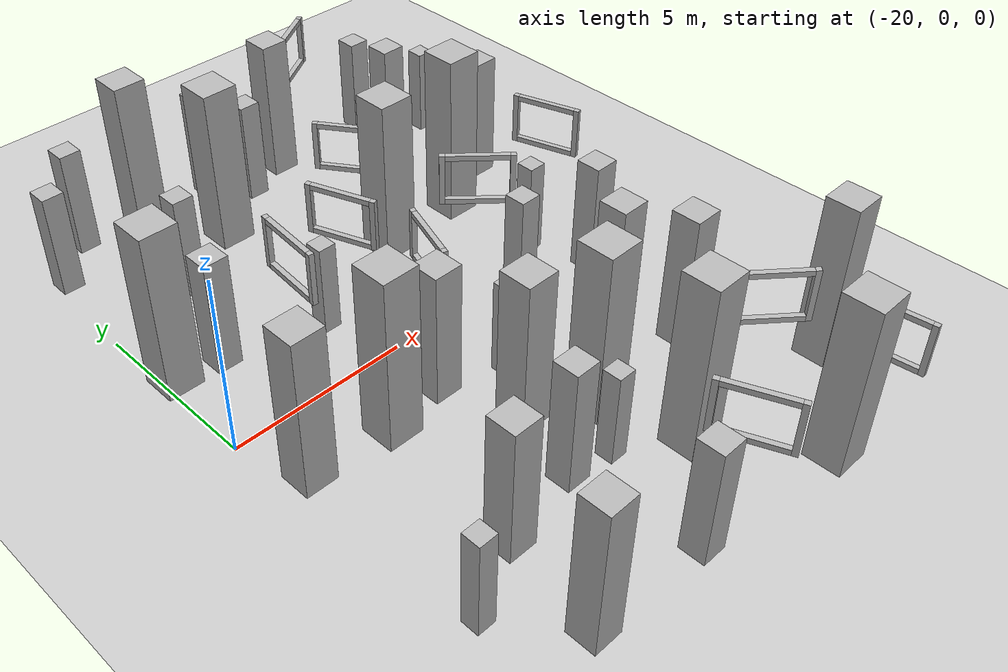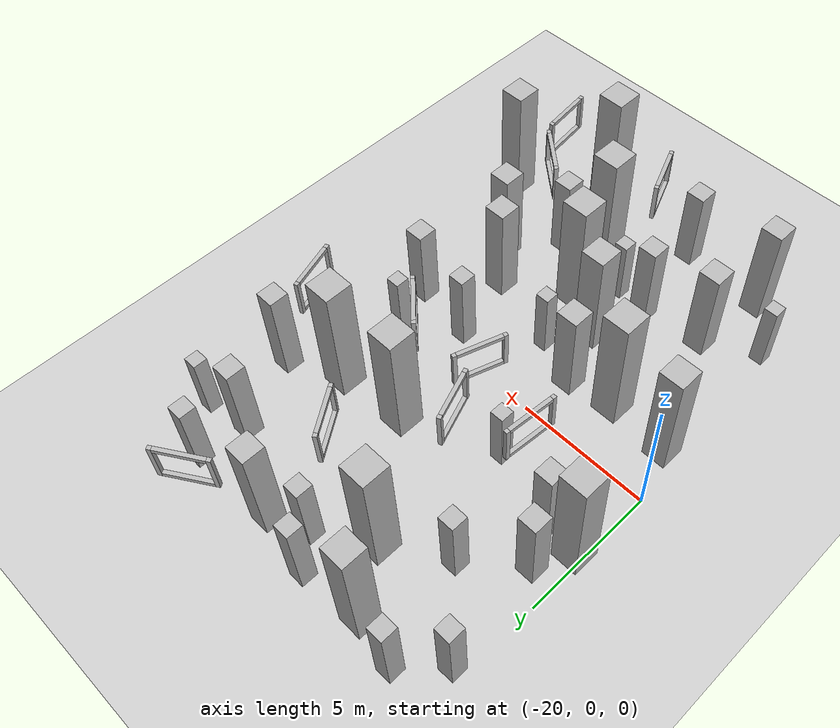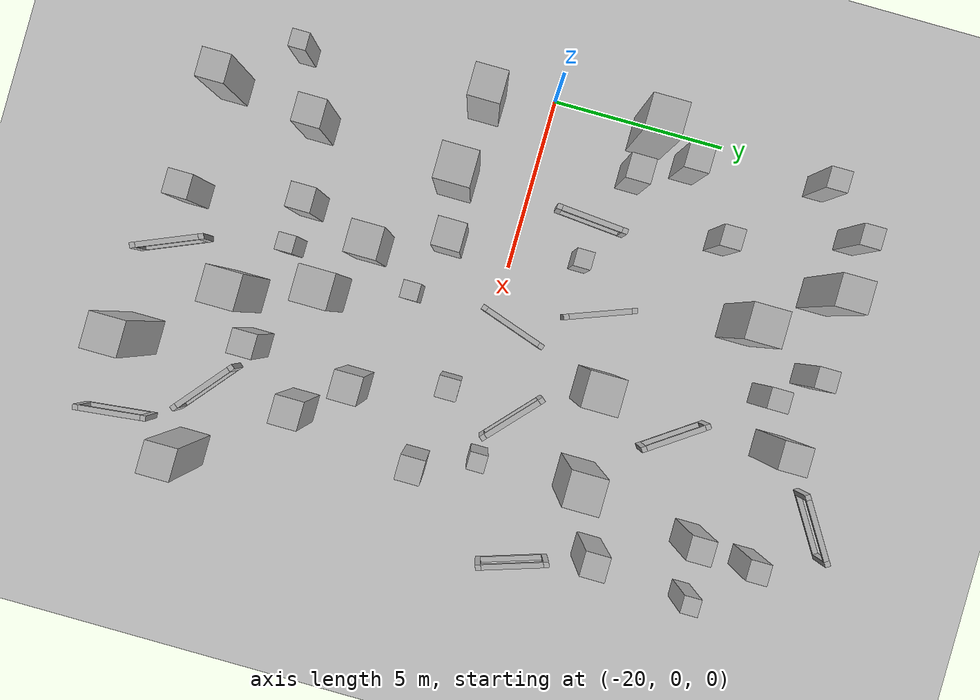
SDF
<sdf version="1.7">
 <world name="default">
  <model name="ground_plane">
   <static>1</static>
   <link name="link">
    <collision name="collision">
     <geometry><plane><normal>0 0 1</normal><size>200 200</size></plane></geometry>
     <surface>
      <contact><collide_bitmask>65535</collide_bitmask></contact>
      <friction><ode><mu>100</mu><mu2>50</mu2></ode></friction>
     </surface>
    </collision>
    <visual name="visual">
     <cast_shadows>0</cast_shadows>
     <geometry><plane><normal>0 0 1</normal><size>200 200</size></plane></geometry>
     <material>
      <script><uri>file://media/materials/scripts/gazebo.material</uri><name>Gazebo/Grey</name></script>
     </material>
    </visual>
   </link>
  </model>
  <model name="box_0">
   <static>true</static>
   <pose>-15.693732802561282 1.9010412841248048 1.3021207821565621 0.0 0.0 0.0</pose>
   <link name="link">
    <visual name="visual"><geometry><box><size>0.5 0.5 2.6</size></box></geometry></visual>
    <collision name="collision"><geometry><box><size>0.5 0.5 2.6</size></box></geometry></collision>
   </link>
  </model>
  <model name="box_4">
   <static>true</static>
   <pose>-9.775437775966598 3.4261886387856073 2.4927592980274222 0.0 0.0 0.0</pose>
   <link name="link">
    <visual name="visual"><geometry><box><size>1.0 1.0 5.0</size></box></geometry></visual>
    <collision name="collision"><geometry><box><size>1.0 1.0 5.0</size></box></geometry></collision>
   </link>
  </model>
  <model name="box_11">
   <static>true</static>
   <pose>-18.34497994796393 9.174452006319477 1.5645176789630977 0.0 0.0 0.0</pose>
   <link name="link">
    <visual name="visual"><geometry><box><size>0.6 0.6 3.1</size></box></geometry></visual>
    <collision name="collision"><geometry><box><size>0.6 0.6 3.1</size></box></geometry></collision>
   </link>
  </model>
  <model name="box_13">
   <static>true</static>
   <pose>-7.383856976449161 7.260608141986836 1.2957606630450136 0.0 0.0 0.0</pose>
   <link name="link">
    <visual name="visual"><geometry><box><size>0.5 0.5 2.6</size></box></geometry></visual>
    <collision name="collision"><geometry><box><size>0.5 0.5 2.6</size></box></geometry></collision>
   </link>
  </model>
  <model name="box_17">
   <static>true</static>
   <pose>-18.408177678134862 2.6778827294822616 1.6267776214189247 0.0 0.0 0.0</pose>
   <link name="link">
    <visual name="visual"><geometry><box><size>0.7 0.7 3.3</size></box></geometry></visual>
    <collision name="collision"><geometry><box><size>0.7 0.7 3.3</size></box></geometry></collision>
   </link>
  </model>
  <model name="box_18">
   <static>true</static>
   <pose>-17.320881476741317 5.58467907052054 1.4753970393791804 0.0 0.0 0.0</pose>
   <link name="link">
    <visual name="visual"><geometry><box><size>0.6 0.6 3.0</size></box></geometry></visual>
    <collision name="collision"><geometry><box><size>0.6 0.6 3.0</size></box></geometry></collision>
   </link>
  </model>
  <model name="box_22">
   <static>true</static>
   <pose>-14.306891463995463 9.029986216593336 1.5827475564926994 0.0 0.0 0.0</pose>
   <link name="link">
    <visual name="visual"><geometry><box><size>0.6 0.6 3.2</size></box></geometry></visual>
    <collision name="collision"><geometry><box><size>0.6 0.6 3.2</size></box></geometry></collision>
   </link>
  </model>
  <model name="box_25">
   <static>true</static>
   <pose>-10.334891847796515 -9.624662155377358 2.3940854821781707 0.0 0.0 0.0</pose>
   <link name="link">
    <visual name="visual"><geometry><box><size>1.0 1.0 4.8</size></box></geometry></visual>
    <collision name="collision"><geometry><box><size>1.0 1.0 4.8</size></box></geometry></collision>
   </link>
  </model>
  <model name="box_26">
   <static>true</static>
   <pose>-15.178070919298117 -5.858220049039058 1.7735471317737157 0.0 0.0 0.0</pose>
   <link name="link">
    <visual name="visual"><geometry><box><size>0.7 0.7 3.5</size></box></geometry></visual>
    <collision name="collision"><geometry><box><size>0.7 0.7 3.5</size></box></geometry></collision>
   </link>
  </model>
  <model name="box_27">
   <static>true</static>
   <pose>-19.68421008236153 2.8374367884617406 2.4128040677091307 0.0 0.0 0.0</pose>
   <link name="link">
    <visual name="visual"><geometry><box><size>1.0 1.0 4.8</size></box></geometry></visual>
    <collision name="collision"><geometry><box><size>1.0 1.0 4.8</size></box></geometry></collision>
   </link>
  </model>
  <model name="box_31">
   <static>true</static>
   <pose>-11.321248463884066 -0.714655532988278 1.610023235543801 0.0 0.0 0.0</pose>
   <link name="link">
    <visual name="visual"><geometry><box><size>0.6 0.6 3.2</size></box></geometry></visual>
    <collision name="collision"><geometry><box><size>0.6 0.6 3.2</size></box></geometry></collision>
   </link>
  </model>
  <model name="box_34">
   <static>true</static>
   <pose>-15.202415172383365 6.794662659507182 2.3876265205682365 0.0 0.0 0.0</pose>
   <link name="link">
    <visual name="visual"><geometry><box><size>1.0 1.0 4.8</size></box></geometry></visual>
    <collision name="collision"><geometry><box><size>1.0 1.0 4.8</size></box></geometry></collision>
   </link>
  </model>
  <model name="box_47">
   <static>true</static>
   <pose>-16.601785446528687 8.764641522759074 2.356862795899992 0.0 0.0 0.0</pose>
   <link name="link">
    <visual name="visual"><geometry><box><size>0.9 0.9 4.7</size></box></geometry></visual>
    <collision name="collision"><geometry><box><size>0.9 0.9 4.7</size></box></geometry></collision>
   </link>
  </model>
  <model name="box_48">
   <static>true</static>
   <pose>-19.596600954006078 7.922800407692108 1.5100188059823405 0.0 0.0 0.0</pose>
   <link name="link">
    <visual name="visual"><geometry><box><size>0.6 0.6 3.0</size></box></geometry></visual>
    <collision name="collision"><geometry><box><size>0.6 0.6 3.0</size></box></geometry></collision>
   </link>
  </model>
  <model name="box_49">
   <static>true</static>
   <pose>-9.580787909558811 0.5934310114886454 1.3519264166614793 0.0 0.0 0.0</pose>
   <link name="link">
    <visual name="visual"><geometry><box><size>0.5 0.5 2.7</size></box></geometry></visual>
    <collision name="collision"><geometry><box><size>0.5 0.5 2.7</size></box></geometry></collision>
   </link>
  </model>
  <model name="box_50">
   <static>true</static>
   <pose>-10.99058011233733 -6.332876920785466 1.672757646255286 0.0 0.0 0.0</pose>
   <link name="link">
    <visual name="visual"><geometry><box><size>0.7 0.7 3.3</size></box></geometry></visual>
    <collision name="collision"><geometry><box><size>0.7 0.7 3.3</size></box></geometry></collision>
   </link>
  </model>
  <model name="box_55">
   <static>true</static>
   <pose>-13.917800924355209 -6.048339329233481 1.281249746202302 0.0 0.0 0.0</pose>
   <link name="link">
    <visual name="visual"><geometry><box><size>0.5 0.5 2.6</size></box></geometry></visual>
    <collision name="collision"><geometry><box><size>0.5 0.5 2.6</size></box></geometry></collision>
   </link>
  </model>
  <model name="box_61">
   <static>true</static>
   <pose>-19.098301855714062 4.102299220456159 1.6705926187938518 0.0 0.0 0.0</pose>
   <link name="link">
    <visual name="visual"><geometry><box><size>0.7 0.7 3.3</size></box></geometry></visual>
    <collision name="collision"><geometry><box><size>0.7 0.7 3.3</size></box></geometry></collision>
   </link>
  </model>
  <model name="box_62">
   <static>true</static>
   <pose>-14.642151781865866 -9.152511274803015 1.6656507049397375 0.0 0.0 0.0</pose>
   <link name="link">
    <visual name="visual"><geometry><box><size>0.7 0.7 3.3</size></box></geometry></visual>
    <collision name="collision"><geometry><box><size>0.7 0.7 3.3</size></box></geometry></collision>
   </link>
  </model>
  <model name="box_69">
   <static>true</static>
   <pose>-8.795870464743608 8.72405908389663 1.4729630395441662 0.0 0.0 0.0</pose>
   <link name="link">
    <visual name="visual"><geometry><box><size>0.6 0.6 2.9</size></box></geometry></visual>
    <collision name="collision"><geometry><box><size>0.6 0.6 2.9</size></box></geometry></collision>
   </link>
  </model>
  <model name="box_74">
   <static>true</static>
   <pose>-9.001530488826376 6.974198633915016 1.728503326522644 0.0 0.0 0.0</pose>
   <link name="link">
    <visual name="visual"><geometry><box><size>0.7 0.7 3.5</size></box></geometry></visual>
    <collision name="collision"><geometry><box><size>0.7 0.7 3.5</size></box></geometry></collision>
   </link>
  </model>
  <model name="box_75">
   <static>true</static>
   <pose>-7.559929930011764 -7.420187723595559 2.3512050250009797 0.0 0.0 0.0</pose>
   <link name="link">
    <visual name="visual"><geometry><box><size>0.9 0.9 4.7</size></box></geometry></visual>
    <collision name="collision"><geometry><box><size>0.9 0.9 4.7</size></box></geometry></collision>
   </link>
  </model>
  <model name="box_79">
   <static>true</static>
   <pose>-13.430722755179278 7.9912064087477965 1.5132552874328469 0.0 0.0 0.0</pose>
   <link name="link">
    <visual name="visual"><geometry><box><size>0.6 0.6 3.0</size></box></geometry></visual>
    <collision name="collision"><geometry><box><size>0.6 0.6 3.0</size></box></geometry></collision>
   </link>
  </model>
  <model name="box_83">
   <static>true</static>
   <pose>-19.32112132718703 -7.166328616966339 1.3719991754825134 0.0 0.0 0.0</pose>
   <link name="link">
    <visual name="visual"><geometry><box><size>0.5 0.5 2.7</size></box></geometry></visual>
    <collision name="collision"><geometry><box><size>0.5 0.5 2.7</size></box></geometry></collision>
   </link>
  </model>
  <model name="box_86">
   <static>true</static>
   <pose>-9.585912128171188 -4.639331684046455 1.9503960932806659 0.0 0.0 0.0</pose>
   <link name="link">
    <visual name="visual"><geometry><box><size>0.8 0.8 3.9</size></box></geometry></visual>
    <collision name="collision"><geometry><box><size>0.8 0.8 3.9</size></box></geometry></collision>
   </link>
  </model>
  <model name="box_87">
   <static>true</static>
   <pose>-12.96994618035811 -4.756420934403877 2.433605457311555 0.0 0.0 0.0</pose>
   <link name="link">
    <visual name="visual"><geometry><box><size>1.0 1.0 4.9</size></box></geometry></visual>
    <collision name="collision"><geometry><box><size>1.0 1.0 4.9</size></box></geometry></collision>
   </link>
  </model>
  <model name="box_89">
   <static>true</static>
   <pose>-17.006512714398223 -2.0571651711662264 2.4717994325021175 0.0 0.0 0.0</pose>
   <link name="link">
    <visual name="visual"><geometry><box><size>1.0 1.0 4.9</size></box></geometry></visual>
    <collision name="collision"><geometry><box><size>1.0 1.0 4.9</size></box></geometry></collision>
   </link>
  </model>
  <model name="box_94">
   <static>true</static>
   <pose>-12.066474680729522 8.559443396809783 2.1125334046797635 0.0 0.0 0.0</pose>
   <link name="link">
    <visual name="visual"><geometry><box><size>0.8 0.8 4.2</size></box></geometry></visual>
    <collision name="collision"><geometry><box><size>0.8 0.8 4.2</size></box></geometry></collision>
   </link>
  </model>
  <model name="box_95">
   <static>true</static>
   <pose>-17.43304669144555 -6.227975599334545 1.8981434304040596 0.0 0.0 0.0</pose>
   <link name="link">
    <visual name="visual"><geometry><box><size>0.8 0.8 3.8</size></box></geometry></visual>
    <collision name="collision"><geometry><box><size>0.8 0.8 3.8</size></box></geometry></collision>
   </link>
  </model>
  <model name="box_97">
   <static>true</static>
   <pose>-15.289361052982088 -1.783559502434386 1.915635433409656 0.0 0.0 0.0</pose>
   <link name="link">
    <visual name="visual"><geometry><box><size>0.8 0.8 3.8</size></box></geometry></visual>
    <collision name="collision"><geometry><box><size>0.8 0.8 3.8</size></box></geometry></collision>
   </link>
  </model>
  <model name="box_99">
   <static>true</static>
   <pose>-8.9527658331115 -1.0938735919976708 1.6637966947212057 0.0 0.0 0.0</pose>
   <link name="link">
    <visual name="visual"><geometry><box><size>0.7 0.7 3.3</size></box></geometry></visual>
    <collision name="collision"><geometry><box><size>0.7 0.7 3.3</size></box></geometry></collision>
   </link>
  </model>
  <model name="box_100">
   <static>true</static>
   <pose>-13.582646553381492 -2.4135328312218496 1.3343229006603203 0.0 0.0 0.0</pose>
   <link name="link">
    <visual name="visual"><geometry><box><size>0.5 0.5 2.7</size></box></geometry></visual>
    <collision name="collision"><geometry><box><size>0.5 0.5 2.7</size></box></geometry></collision>
   </link>
  </model>
  <model name="box_101">
   <static>true</static>
   <pose>-19.30140651630435 -1.8477611684641033 2.260051603068443 0.0 0.0 0.0</pose>
   <link name="link">
    <visual name="visual"><geometry><box><size>0.9 0.9 4.5</size></box></geometry></visual>
    <collision name="collision"><geometry><box><size>0.9 0.9 4.5</size></box></geometry></collision>
   </link>
  </model>
  <model name="box_108">
   <static>true</static>
   <pose>-12.360875105007123 3.2163285240513986 2.4206616585411442 0.0 0.0 0.0</pose>
   <link name="link">
    <visual name="visual"><geometry><box><size>1.0 1.0 4.8</size></box></geometry></visual>
    <collision name="collision"><geometry><box><size>1.0 1.0 4.8</size></box></geometry></collision>
   </link>
  </model>
  <model name="box_109">
   <static>true</static>
   <pose>-7.856709699874834 4.331550577828416 1.8429803151894784 0.0 0.0 0.0</pose>
   <link name="link">
    <visual name="visual"><geometry><box><size>0.7 0.7 3.7</size></box></geometry></visual>
    <collision name="collision"><geometry><box><size>0.7 0.7 3.7</size></box></geometry></collision>
   </link>
  </model>
  <model name="box_111">
   <static>true</static>
   <pose>-10.647865228211089 -3.3043572665611176 2.0157988238267817 0.0 0.0 0.0</pose>
   <link name="link">
    <visual name="visual"><geometry><box><size>0.8 0.8 4.0</size></box></geometry></visual>
    <collision name="collision"><geometry><box><size>0.8 0.8 4.0</size></box></geometry></collision>
   </link>
  </model>
  <model name="box_112">
   <static>true</static>
   <pose>-17.8561118385449 -8.924028524757308 2.047480657995799 0.0 0.0 0.0</pose>
   <link name="link">
    <visual name="visual"><geometry><box><size>0.8 0.8 4.1</size></box></geometry></visual>
    <collision name="collision"><geometry><box><size>0.8 0.8 4.1</size></box></geometry></collision>
   </link>
  </model>
  <model name="box_113">
   <static>true</static>
   <pose>-14.521981902146518 -3.856652532999947 2.1973340723633377 0.0 0.0 0.0</pose>
   <link name="link">
    <visual name="visual"><geometry><box><size>0.9 0.9 4.4</size></box></geometry></visual>
    <collision name="collision"><geometry><box><size>0.9 0.9 4.4</size></box></geometry></collision>
   </link>
  </model>
  <model name="box_116">
   <static>true</static>
   <pose>-12.311692166315108 -7.02919646535195 2.477296374915014 0.0 0.0 0.0</pose>
   <link name="link">
    <visual name="visual"><geometry><box><size>1.0 1.0 5.0</size></box></geometry></visual>
    <collision name="collision"><geometry><box><size>1.0 1.0 5.0</size></box></geometry></collision>
   </link>
  </model>
  <model name="block_0">
   <pose>-13.383300756689483 0.5363580835997173 1.7935142069319716 0.0 0.0 -0.32617459520312964</pose>
   <static>true</static>
   <link name="right_vertical_edge">
    <pose>0 0.925 0 0 0 0</pose>
    <visual name="right_visual">
     <geometry><box><size>0.15 0.15 1.5</size></box></geometry>
     <material>Gazebo/Blue</material>
    </visual>
    <collision name="right_collision"><geometry><box><size>0.15 0.15 1.5</size></box></geometry></collision>
   </link>
   <link name="left_vertical_edge">
    <pose>0 -0.925 0 0 0 0</pose>
    <visual name="left_visual">
     <geometry><box><size>0.15 0.15 1.5</size></box></geometry>
     <material>Gazebo/Blue</material>
    </visual>
    <collision name="left_collision"><geometry><box><size>0.15 0.15 1.5</size></box></geometry></collision>
   </link>
   <link name="top_horizontal_edge">
    <pose>0 0 0.675 0 0 0</pose>
    <visual name="top_visual">
     <geometry><box><size>0.15 1.7 0.15</size></box></geometry>
     <material>Gazebo/Blue</material>
    </visual>
    <collision name="top_collision"><geometry><box><size>0.15 1.7 0.15</size></box></geometry></collision>
   </link>
   <link name="bottom_horizontal_edge">
    <pose>0 0 -0.675 0 0 0</pose>
    <visual name="bottom_visual">
     <geometry><box><size>0.15 1.7  0.15</size></box></geometry>
     <material>Gazebo/Blue</material>
    </visual>
    <collision name="bottom_collision"><geometry><box><size>0.15 1.7 0.15</size></box></geometry></collision>
   </link>
   <joint name="right-top_joint" type="fixed">
    <parent>right_vertical_edge</parent>
    <child>top_horizontal_edge</child>
    <origin xyz="-0.925 0 0 0 0 0"/>
   </joint>
   <joint name="left-top_joint" type="fixed">
    <parent>left_vertical_edge</parent>
    <child>top_horizontal_edge</child>
    <origin xyz="0.925 0 0 0 0 0"/>
   </joint>
   <joint name="right-bottom_joint" type="fixed">
    <parent>right_vertical_edge</parent>
    <child>bottom_horizontal_edge</child>
    <origin xyz="-0.925 0 0 0 0 0"/>
   </joint>
   <joint name="left-bottom_joint" type="fixed">
    <parent>left_vertical_edge</parent>
    <child>bottom_horizontal_edge</child>
    <origin xyz="0.925 0 0 0 0 0"/>
   </joint>
  </model>
  <model name="block_4">
   <pose>-8.206121865333474 -9.330303331379287 2.1896050051614466 0.0 0.0 0.11153111963871716</pose>
   <static>true</static>
   <link name="right_vertical_edge">
    <pose>0 0.925 0 0 0 0</pose>
    <visual name="right_visual">
     <geometry><box><size>0.15 0.15 1.5</size></box></geometry>
     <material>Gazebo/Blue</material>
    </visual>
    <collision name="right_collision"><geometry><box><size>0.15 0.15 1.5</size></box></geometry></collision>
   </link>
   <link name="left_vertical_edge">
    <pose>0 -0.925 0 0 0 0</pose>
    <visual name="left_visual">
     <geometry><box><size>0.15 0.15 1.5</size></box></geometry>
     <material>Gazebo/Blue</material>
    </visual>
    <collision name="left_collision"><geometry><box><size>0.15 0.15 1.5</size></box></geometry></collision>
   </link>
   <link name="top_horizontal_edge">
    <pose>0 0 0.675 0 0 0</pose>
    <visual name="top_visual">
     <geometry><box><size>0.15 1.7 0.15</size></box></geometry>
     <material>Gazebo/Blue</material>
    </visual>
    <collision name="top_collision"><geometry><box><size>0.15 1.7 0.15</size></box></geometry></collision>
   </link>
   <link name="bottom_horizontal_edge">
    <pose>0 0 -0.675 0 0 0</pose>
    <visual name="bottom_visual">
     <geometry><box><size>0.15 1.7  0.15</size></box></geometry>
     <material>Gazebo/Blue</material>
    </visual>
    <collision name="bottom_collision"><geometry><box><size>0.15 1.7 0.15</size></box></geometry></collision>
   </link>
   <joint name="right-top_joint" type="fixed">
    <parent>right_vertical_edge</parent>
    <child>top_horizontal_edge</child>
    <origin xyz="-0.925 0 0 0 0 0"/>
   </joint>
   <joint name="left-top_joint" type="fixed">
    <parent>left_vertical_edge</parent>
    <child>top_horizontal_edge</child>
    <origin xyz="0.925 0 0 0 0 0"/>
   </joint>
   <joint name="right-bottom_joint" type="fixed">
    <parent>right_vertical_edge</parent>
    <child>bottom_horizontal_edge</child>
    <origin xyz="-0.925 0 0 0 0 0"/>
   </joint>
   <joint name="left-bottom_joint" type="fixed">
    <parent>left_vertical_edge</parent>
    <child>bottom_horizontal_edge</child>
    <origin xyz="0.925 0 0 0 0 0"/>
   </joint>
  </model>
  <model name="block_6">
   <pose>-16.72903729048887 1.7753818689545184 2.7444836969081017 0.0 0.0 -0.08460488494527266</pose>
   <static>true</static>
   <link name="right_vertical_edge">
    <pose>0 0.925 0 0 0 0</pose>
    <visual name="right_visual">
     <geometry><box><size>0.15 0.15 1.5</size></box></geometry>
     <material>Gazebo/Blue</material>
    </visual>
    <collision name="right_collision"><geometry><box><size>0.15 0.15 1.5</size></box></geometry></collision>
   </link>
   <link name="left_vertical_edge">
    <pose>0 -0.925 0 0 0 0</pose>
    <visual name="left_visual">
     <geometry><box><size>0.15 0.15 1.5</size></box></geometry>
     <material>Gazebo/Blue</material>
    </visual>
    <collision name="left_collision"><geometry><box><size>0.15 0.15 1.5</size></box></geometry></collision>
   </link>
   <link name="top_horizontal_edge">
    <pose>0 0 0.675 0 0 0</pose>
    <visual name="top_visual">
     <geometry><box><size>0.15 1.7 0.15</size></box></geometry>
     <material>Gazebo/Blue</material>
    </visual>
    <collision name="top_collision"><geometry><box><size>0.15 1.7 0.15</size></box></geometry></collision>
   </link>
   <link name="bottom_horizontal_edge">
    <pose>0 0 -0.675 0 0 0</pose>
    <visual name="bottom_visual">
     <geometry><box><size>0.15 1.7  0.15</size></box></geometry>
     <material>Gazebo/Blue</material>
    </visual>
    <collision name="bottom_collision"><geometry><box><size>0.15 1.7 0.15</size></box></geometry></collision>
   </link>
   <joint name="right-top_joint" type="fixed">
    <parent>right_vertical_edge</parent>
    <child>top_horizontal_edge</child>
    <origin xyz="-0.925 0 0 0 0 0"/>
   </joint>
   <joint name="left-top_joint" type="fixed">
    <parent>left_vertical_edge</parent>
    <child>top_horizontal_edge</child>
    <origin xyz="0.925 0 0 0 0 0"/>
   </joint>
   <joint name="right-bottom_joint" type="fixed">
    <parent>right_vertical_edge</parent>
    <child>bottom_horizontal_edge</child>
    <origin xyz="-0.925 0 0 0 0 0"/>
   </joint>
   <joint name="left-bottom_joint" type="fixed">
    <parent>left_vertical_edge</parent>
    <child>bottom_horizontal_edge</child>
    <origin xyz="0.925 0 0 0 0 0"/>
   </joint>
  </model>
  <model name="block_8">
   <pose>-13.094010907511034 -8.98272028759167 2.7054262959670456 0.0 0.0 0.3995634892666311</pose>
   <static>true</static>
   <link name="right_vertical_edge">
    <pose>0 0.925 0 0 0 0</pose>
    <visual name="right_visual">
     <geometry><box><size>0.15 0.15 1.5</size></box></geometry>
     <material>Gazebo/Blue</material>
    </visual>
    <collision name="right_collision"><geometry><box><size>0.15 0.15 1.5</size></box></geometry></collision>
   </link>
   <link name="left_vertical_edge">
    <pose>0 -0.925 0 0 0 0</pose>
    <visual name="left_visual">
     <geometry><box><size>0.15 0.15 1.5</size></box></geometry>
     <material>Gazebo/Blue</material>
    </visual>
    <collision name="left_collision"><geometry><box><size>0.15 0.15 1.5</size></box></geometry></collision>
   </link>
   <link name="top_horizontal_edge">
    <pose>0 0 0.675 0 0 0</pose>
    <visual name="top_visual">
     <geometry><box><size>0.15 1.7 0.15</size></box></geometry>
     <material>Gazebo/Blue</material>
    </visual>
    <collision name="top_collision"><geometry><box><size>0.15 1.7 0.15</size></box></geometry></collision>
   </link>
   <link name="bottom_horizontal_edge">
    <pose>0 0 -0.675 0 0 0</pose>
    <visual name="bottom_visual">
     <geometry><box><size>0.15 1.7  0.15</size></box></geometry>
     <material>Gazebo/Blue</material>
    </visual>
    <collision name="bottom_collision"><geometry><box><size>0.15 1.7 0.15</size></box></geometry></collision>
   </link>
   <joint name="right-top_joint" type="fixed">
    <parent>right_vertical_edge</parent>
    <child>top_horizontal_edge</child>
    <origin xyz="-0.925 0 0 0 0 0"/>
   </joint>
   <joint name="left-top_joint" type="fixed">
    <parent>left_vertical_edge</parent>
    <child>top_horizontal_edge</child>
    <origin xyz="0.925 0 0 0 0 0"/>
   </joint>
   <joint name="right-bottom_joint" type="fixed">
    <parent>right_vertical_edge</parent>
    <child>bottom_horizontal_edge</child>
    <origin xyz="-0.925 0 0 0 0 0"/>
   </joint>
   <joint name="left-bottom_joint" type="fixed">
    <parent>left_vertical_edge</parent>
    <child>bottom_horizontal_edge</child>
    <origin xyz="0.925 0 0 0 0 0"/>
   </joint>
  </model>
  <model name="block_14">
   <pose>-14.36094093985917 2.6953364772753297 2.3305505010445144 0.0 0.0 0.35929821862809025</pose>
   <static>true</static>
   <link name="right_vertical_edge">
    <pose>0 0.925 0 0 0 0</pose>
    <visual name="right_visual">
     <geometry><box><size>0.15 0.15 1.5</size></box></geometry>
     <material>Gazebo/Blue</material>
    </visual>
    <collision name="right_collision"><geometry><box><size>0.15 0.15 1.5</size></box></geometry></collision>
   </link>
   <link name="left_vertical_edge">
    <pose>0 -0.925 0 0 0 0</pose>
    <visual name="left_visual">
     <geometry><box><size>0.15 0.15 1.5</size></box></geometry>
     <material>Gazebo/Blue</material>
    </visual>
    <collision name="left_collision"><geometry><box><size>0.15 0.15 1.5</size></box></geometry></collision>
   </link>
   <link name="top_horizontal_edge">
    <pose>0 0 0.675 0 0 0</pose>
    <visual name="top_visual">
     <geometry><box><size>0.15 1.7 0.15</size></box></geometry>
     <material>Gazebo/Blue</material>
    </visual>
    <collision name="top_collision"><geometry><box><size>0.15 1.7 0.15</size></box></geometry></collision>
   </link>
   <link name="bottom_horizontal_edge">
    <pose>0 0 -0.675 0 0 0</pose>
    <visual name="bottom_visual">
     <geometry><box><size>0.15 1.7  0.15</size></box></geometry>
     <material>Gazebo/Blue</material>
    </visual>
    <collision name="bottom_collision"><geometry><box><size>0.15 1.7 0.15</size></box></geometry></collision>
   </link>
   <joint name="right-top_joint" type="fixed">
    <parent>right_vertical_edge</parent>
    <child>top_horizontal_edge</child>
    <origin xyz="-0.925 0 0 0 0 0"/>
   </joint>
   <joint name="left-top_joint" type="fixed">
    <parent>left_vertical_edge</parent>
    <child>top_horizontal_edge</child>
    <origin xyz="0.925 0 0 0 0 0"/>
   </joint>
   <joint name="right-bottom_joint" type="fixed">
    <parent>right_vertical_edge</parent>
    <child>bottom_horizontal_edge</child>
    <origin xyz="-0.925 0 0 0 0 0"/>
   </joint>
   <joint name="left-bottom_joint" type="fixed">
    <parent>left_vertical_edge</parent>
    <child>bottom_horizontal_edge</child>
    <origin xyz="0.925 0 0 0 0 0"/>
   </joint>
  </model>
  <model name="block_16">
   <pose>-7.150727096804811 2.2631796968592237 2.078057320610121 0.0 0.0 0.31204036281126407</pose>
   <static>true</static>
   <link name="right_vertical_edge">
    <pose>0 0.925 0 0 0 0</pose>
    <visual name="right_visual">
     <geometry><box><size>0.15 0.15 1.5</size></box></geometry>
     <material>Gazebo/Blue</material>
    </visual>
    <collision name="right_collision"><geometry><box><size>0.15 0.15 1.5</size></box></geometry></collision>
   </link>
   <link name="left_vertical_edge">
    <pose>0 -0.925 0 0 0 0</pose>
    <visual name="left_visual">
     <geometry><box><size>0.15 0.15 1.5</size></box></geometry>
     <material>Gazebo/Blue</material>
    </visual>
    <collision name="left_collision"><geometry><box><size>0.15 0.15 1.5</size></box></geometry></collision>
   </link>
   <link name="top_horizontal_edge">
    <pose>0 0 0.675 0 0 0</pose>
    <visual name="top_visual">
     <geometry><box><size>0.15 1.7 0.15</size></box></geometry>
     <material>Gazebo/Blue</material>
    </visual>
    <collision name="top_collision"><geometry><box><size>0.15 1.7 0.15</size></box></geometry></collision>
   </link>
   <link name="bottom_horizontal_edge">
    <pose>0 0 -0.675 0 0 0</pose>
    <visual name="bottom_visual">
     <geometry><box><size>0.15 1.7  0.15</size></box></geometry>
     <material>Gazebo/Blue</material>
    </visual>
    <collision name="bottom_collision"><geometry><box><size>0.15 1.7 0.15</size></box></geometry></collision>
   </link>
   <joint name="right-top_joint" type="fixed">
    <parent>right_vertical_edge</parent>
    <child>top_horizontal_edge</child>
    <origin xyz="-0.925 0 0 0 0 0"/>
   </joint>
   <joint name="left-top_joint" type="fixed">
    <parent>left_vertical_edge</parent>
    <child>top_horizontal_edge</child>
    <origin xyz="0.925 0 0 0 0 0"/>
   </joint>
   <joint name="right-bottom_joint" type="fixed">
    <parent>right_vertical_edge</parent>
    <child>bottom_horizontal_edge</child>
    <origin xyz="-0.925 0 0 0 0 0"/>
   </joint>
   <joint name="left-bottom_joint" type="fixed">
    <parent>left_vertical_edge</parent>
    <child>bottom_horizontal_edge</child>
    <origin xyz="0.925 0 0 0 0 0"/>
   </joint>
  </model>
  <model name="block_18">
   <pose>-11.674038668930258 5.646064182366576 1.7699076242748402 0.0 0.0 0.6086416201863843</pose>
   <static>true</static>
   <link name="right_vertical_edge">
    <pose>0 0.925 0 0 0 0</pose>
    <visual name="right_visual">
     <geometry><box><size>0.15 0.15 1.5</size></box></geometry>
     <material>Gazebo/Blue</material>
    </visual>
    <collision name="right_collision"><geometry><box><size>0.15 0.15 1.5</size></box></geometry></collision>
   </link>
   <link name="left_vertical_edge">
    <pose>0 -0.925 0 0 0 0</pose>
    <visual name="left_visual">
     <geometry><box><size>0.15 0.15 1.5</size></box></geometry>
     <material>Gazebo/Blue</material>
    </visual>
    <collision name="left_collision"><geometry><box><size>0.15 0.15 1.5</size></box></geometry></collision>
   </link>
   <link name="top_horizontal_edge">
    <pose>0 0 0.675 0 0 0</pose>
    <visual name="top_visual">
     <geometry><box><size>0.15 1.7 0.15</size></box></geometry>
     <material>Gazebo/Blue</material>
    </visual>
    <collision name="top_collision"><geometry><box><size>0.15 1.7 0.15</size></box></geometry></collision>
   </link>
   <link name="bottom_horizontal_edge">
    <pose>0 0 -0.675 0 0 0</pose>
    <visual name="bottom_visual">
     <geometry><box><size>0.15 1.7  0.15</size></box></geometry>
     <material>Gazebo/Blue</material>
    </visual>
    <collision name="bottom_collision"><geometry><box><size>0.15 1.7 0.15</size></box></geometry></collision>
   </link>
   <joint name="right-top_joint" type="fixed">
    <parent>right_vertical_edge</parent>
    <child>top_horizontal_edge</child>
    <origin xyz="-0.925 0 0 0 0 0"/>
   </joint>
   <joint name="left-top_joint" type="fixed">
    <parent>left_vertical_edge</parent>
    <child>top_horizontal_edge</child>
    <origin xyz="0.925 0 0 0 0 0"/>
   </joint>
   <joint name="right-bottom_joint" type="fixed">
    <parent>right_vertical_edge</parent>
    <child>bottom_horizontal_edge</child>
    <origin xyz="-0.925 0 0 0 0 0"/>
   </joint>
   <joint name="left-bottom_joint" type="fixed">
    <parent>left_vertical_edge</parent>
    <child>bottom_horizontal_edge</child>
    <origin xyz="0.925 0 0 0 0 0"/>
   </joint>
  </model>
  <model name="block_21">
   <pose>-10.350498211292571 9.825770468753888 2.6039404136976128 0.0 0.0 -1.0170485105329623</pose>
   <static>true</static>
   <link name="right_vertical_edge">
    <pose>0 0.925 0 0 0 0</pose>
    <visual name="right_visual">
     <geometry><box><size>0.15 0.15 1.5</size></box></geometry>
     <material>Gazebo/Blue</material>
    </visual>
    <collision name="right_collision"><geometry><box><size>0.15 0.15 1.5</size></box></geometry></collision>
   </link>
   <link name="left_vertical_edge">
    <pose>0 -0.925 0 0 0 0</pose>
    <visual name="left_visual">
     <geometry><box><size>0.15 0.15 1.5</size></box></geometry>
     <material>Gazebo/Blue</material>
    </visual>
    <collision name="left_collision"><geometry><box><size>0.15 0.15 1.5</size></box></geometry></collision>
   </link>
   <link name="top_horizontal_edge">
    <pose>0 0 0.675 0 0 0</pose>
    <visual name="top_visual">
     <geometry><box><size>0.15 1.7 0.15</size></box></geometry>
     <material>Gazebo/Blue</material>
    </visual>
    <collision name="top_collision"><geometry><box><size>0.15 1.7 0.15</size></box></geometry></collision>
   </link>
   <link name="bottom_horizontal_edge">
    <pose>0 0 -0.675 0 0 0</pose>
    <visual name="bottom_visual">
     <geometry><box><size>0.15 1.7  0.15</size></box></geometry>
     <material>Gazebo/Blue</material>
    </visual>
    <collision name="bottom_collision"><geometry><box><size>0.15 1.7 0.15</size></box></geometry></collision>
   </link>
   <joint name="right-top_joint" type="fixed">
    <parent>right_vertical_edge</parent>
    <child>top_horizontal_edge</child>
    <origin xyz="-0.925 0 0 0 0 0"/>
   </joint>
   <joint name="left-top_joint" type="fixed">
    <parent>left_vertical_edge</parent>
    <child>top_horizontal_edge</child>
    <origin xyz="0.925 0 0 0 0 0"/>
   </joint>
   <joint name="right-bottom_joint" type="fixed">
    <parent>right_vertical_edge</parent>
    <child>bottom_horizontal_edge</child>
    <origin xyz="-0.925 0 0 0 0 0"/>
   </joint>
   <joint name="left-bottom_joint" type="fixed">
    <parent>left_vertical_edge</parent>
    <child>bottom_horizontal_edge</child>
    <origin xyz="0.925 0 0 0 0 0"/>
   </joint>
  </model>
  <model name="block_24">
   <pose>-9.576777475960586 -7.012251349974658 2.676352344205774 0.0 0.0 0.8778777124460698</pose>
   <static>true</static>
   <link name="right_vertical_edge">
    <pose>0 0.925 0 0 0 0</pose>
    <visual name="right_visual">
     <geometry><box><size>0.15 0.15 1.5</size></box></geometry>
     <material>Gazebo/Blue</material>
    </visual>
    <collision name="right_collision"><geometry><box><size>0.15 0.15 1.5</size></box></geometry></collision>
   </link>
   <link name="left_vertical_edge">
    <pose>0 -0.925 0 0 0 0</pose>
    <visual name="left_visual">
     <geometry><box><size>0.15 0.15 1.5</size></box></geometry>
     <material>Gazebo/Blue</material>
    </visual>
    <collision name="left_collision"><geometry><box><size>0.15 0.15 1.5</size></box></geometry></collision>
   </link>
   <link name="top_horizontal_edge">
    <pose>0 0 0.675 0 0 0</pose>
    <visual name="top_visual">
     <geometry><box><size>0.15 1.7 0.15</size></box></geometry>
     <material>Gazebo/Blue</material>
    </visual>
    <collision name="top_collision"><geometry><box><size>0.15 1.7 0.15</size></box></geometry></collision>
   </link>
   <link name="bottom_horizontal_edge">
    <pose>0 0 -0.675 0 0 0</pose>
    <visual name="bottom_visual">
     <geometry><box><size>0.15 1.7  0.15</size></box></geometry>
     <material>Gazebo/Blue</material>
    </visual>
    <collision name="bottom_collision"><geometry><box><size>0.15 1.7 0.15</size></box></geometry></collision>
   </link>
   <joint name="right-top_joint" type="fixed">
    <parent>right_vertical_edge</parent>
    <child>top_horizontal_edge</child>
    <origin xyz="-0.925 0 0 0 0 0"/>
   </joint>
   <joint name="left-top_joint" type="fixed">
    <parent>left_vertical_edge</parent>
    <child>top_horizontal_edge</child>
    <origin xyz="0.925 0 0 0 0 0"/>
   </joint>
   <joint name="right-bottom_joint" type="fixed">
    <parent>right_vertical_edge</parent>
    <child>bottom_horizontal_edge</child>
    <origin xyz="-0.925 0 0 0 0 0"/>
   </joint>
   <joint name="left-bottom_joint" type="fixed">
    <parent>left_vertical_edge</parent>
    <child>bottom_horizontal_edge</child>
    <origin xyz="0.925 0 0 0 0 0"/>
   </joint>
  </model>
  <model name="block_26">
   <pose>-11.00733628527693 1.174206092730568 2.6224499974970343 0.0 0.0 0.8318528326249169</pose>
   <static>true</static>
   <link name="right_vertical_edge">
    <pose>0 0.925 0 0 0 0</pose>
    <visual name="right_visual">
     <geometry><box><size>0.15 0.15 1.5</size></box></geometry>
     <material>Gazebo/Blue</material>
    </visual>
    <collision name="right_collision"><geometry><box><size>0.15 0.15 1.5</size></box></geometry></collision>
   </link>
   <link name="left_vertical_edge">
    <pose>0 -0.925 0 0 0 0</pose>
    <visual name="left_visual">
     <geometry><box><size>0.15 0.15 1.5</size></box></geometry>
     <material>Gazebo/Blue</material>
    </visual>
    <collision name="left_collision"><geometry><box><size>0.15 0.15 1.5</size></box></geometry></collision>
   </link>
   <link name="top_horizontal_edge">
    <pose>0 0 0.675 0 0 0</pose>
    <visual name="top_visual">
     <geometry><box><size>0.15 1.7 0.15</size></box></geometry>
     <material>Gazebo/Blue</material>
    </visual>
    <collision name="top_collision"><geometry><box><size>0.15 1.7 0.15</size></box></geometry></collision>
   </link>
   <link name="bottom_horizontal_edge">
    <pose>0 0 -0.675 0 0 0</pose>
    <visual name="bottom_visual">
     <geometry><box><size>0.15 1.7  0.15</size></box></geometry>
     <material>Gazebo/Blue</material>
    </visual>
    <collision name="bottom_collision"><geometry><box><size>0.15 1.7 0.15</size></box></geometry></collision>
   </link>
   <joint name="right-top_joint" type="fixed">
    <parent>right_vertical_edge</parent>
    <child>top_horizontal_edge</child>
    <origin xyz="-0.925 0 0 0 0 0"/>
   </joint>
   <joint name="left-top_joint" type="fixed">
    <parent>left_vertical_edge</parent>
    <child>top_horizontal_edge</child>
    <origin xyz="0.925 0 0 0 0 0"/>
   </joint>
   <joint name="right-bottom_joint" type="fixed">
    <parent>right_vertical_edge</parent>
    <child>bottom_horizontal_edge</child>
    <origin xyz="-0.925 0 0 0 0 0"/>
   </joint>
   <joint name="left-bottom_joint" type="fixed">
    <parent>left_vertical_edge</parent>
    <child>bottom_horizontal_edge</child>
    <origin xyz="0.925 0 0 0 0 0"/>
   </joint>
  </model>
 </world>
</sdf>
